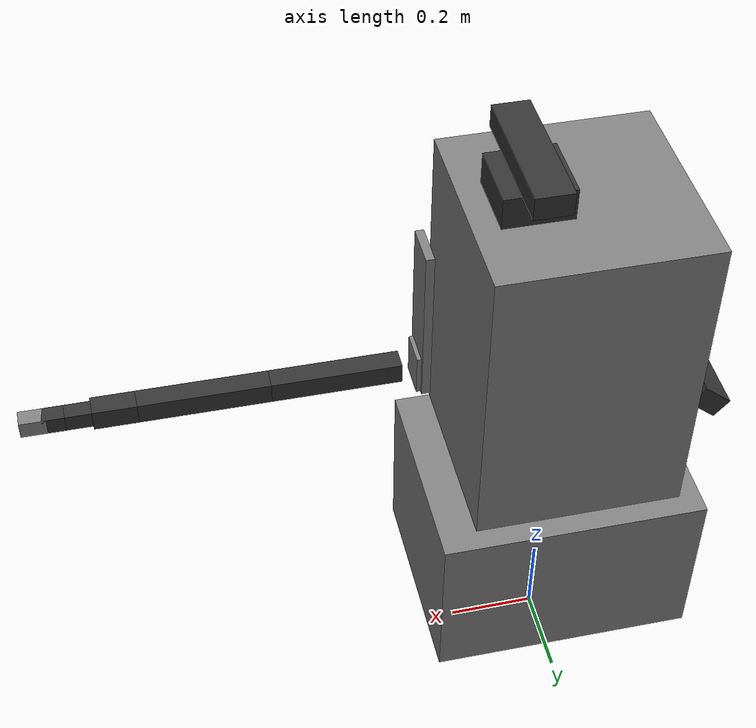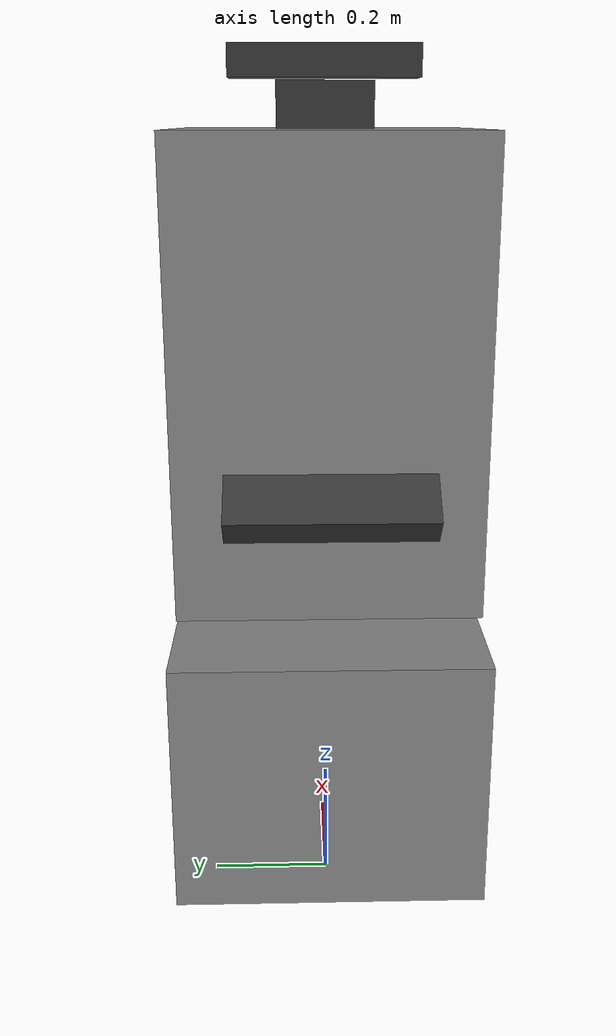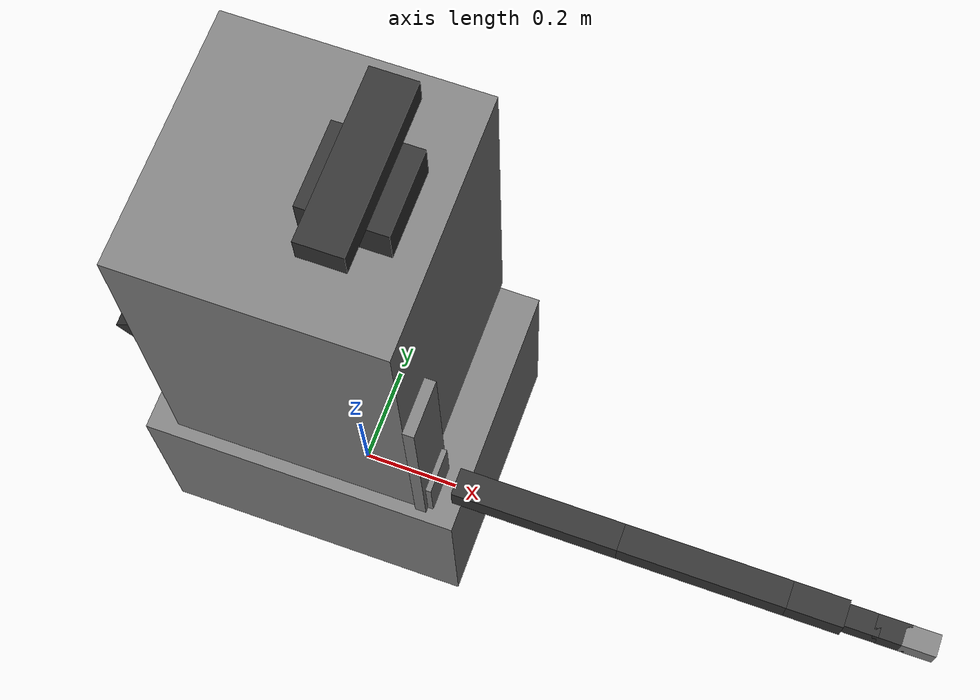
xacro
<?xml version="1.0"?>
<robot xmlns:xacro="http://www.ros.org/wiki/xacro" name="waiterbot">

  <xacro:property name="base_length"                value="0.6" />
  <xacro:property name="base_width"                 value="0.48" />
  <xacro:property name="base_height"                value="0.4" />
  <xacro:property name="base_ground_clearance"      value="0.15" />

  <xacro:property name="body_length"                value="0.46" />
  <xacro:property name="body_width"                 value="0.46" />
  <xacro:property name="body_height"                value="0.7" />
  <xacro:property name="body_base_min_gap"          value="0.05" />
  <xacro:property name="body_base_max_gap"          value="0.35" />
  <xacro:property name="body_max_sideways_angle"    value="0.17" />
  <xacro:property name="body_max_forward_angle"     value="0.17" />
  <xacro:property name="body_sideways_ang_vel"      value="0.1" />
  <xacro:property name="body_forward_ang_vel"       value="0.1" />
  <xacro:property name="body_vertical_vel"          value="0.02" />

  <xacro:property name="top_camera_base_length"     value="0.15" />
  <xacro:property name="top_camera_base_width"      value="0.15" />
  <xacro:property name="top_camera_base_height"     value="0.07" />

  <xacro:property name="top_camera_length"          value="0.08" />
  <xacro:property name="top_camera_width"           value="0.3" />
  <xacro:property name="top_camera_height"          value="0.05" />
  <xacro:property name="top_camera_mounting_height" value="0.1" />
  <xacro:property name="top_camera_mounting_distance" value="0.1" />
  <xacro:property name="top_camera_yaw_limit"       value="2" />
  <xacro:property name="top_camera_yaw_velocity"    value="0.5" />
  <xacro:property name="top_camera_pitch_limit"     value="1" />
  <xacro:property name="top_camera_pitch_velocity"  value="0.5" />

  <xacro:property name="arm_position_x"             value="0.25" />
  <xacro:property name="arm_position_y"             value="0.2" />
  <xacro:property name="arm_position_z"             value="0.1" />

  <xacro:property name="arm_base_slide_length"      value="0.02" />
  <xacro:property name="arm_base_slide_width"       value="0.1" />
  <xacro:property name="arm_base_slide_height"      value="0.4" />

  <xacro:property name="arm_base_slide_limit"       value="0.3" />
  <xacro:property name="arm_base_slide_velocity"    value="0.02" />

  <xacro:property name="arm_base_length"            value="0.02" />
  <xacro:property name="arm_base_width"             value="0.08" />
  <xacro:property name="arm_base_height"            value="0.1" />

  <xacro:property name="arm_link_2_length"          value="0.3" />
  <xacro:property name="arm_link_2_width"           value="0.05" />
  <xacro:property name="arm_link_2_height"          value="0.05" />

  <xacro:property name="arm_joint_2_limit"          value="2" />
  <xacro:property name="arm_joint_2_velocity"       value="0.5" />
  <xacro:property name="arm_joint_2_offset"         value="0.05" />

  <xacro:property name="arm_link_3_length"          value="0.3" />
  <xacro:property name="arm_link_3_width"           value="0.05" />
  <xacro:property name="arm_link_3_height"          value="0.05" />

  <xacro:property name="arm_joint_3_limit"          value="2" />
  <xacro:property name="arm_joint_3_velocity"       value="0.5" />

  <xacro:property name="arm_link_4_length"          value="0.1" />
  <xacro:property name="arm_link_4_width"           value="0.05" />
  <xacro:property name="arm_link_4_height"          value="0.05" />

  <xacro:property name="arm_joint_4_limit"          value="2" />
  <xacro:property name="arm_joint_4_velocity"       value="0.5" />

  <xacro:property name="arm_link_5_length"          value="0.06" />
  <xacro:property name="arm_link_5_width"           value="0.04" />
  <xacro:property name="arm_link_5_height"          value="0.04" />

  <xacro:property name="arm_joint_5_limit"          value="2" />
  <xacro:property name="arm_joint_5_velocity"       value="0.5" />

  <xacro:property name="arm_link_6_length"          value="0.06" />
  <xacro:property name="arm_link_6_width"           value="0.04" />
  <xacro:property name="arm_link_6_height"          value="0.04" />

  <xacro:property name="arm_joint_6_limit"          value="2" />
  <xacro:property name="arm_joint_6_velocity"       value="0.5" />

  <xacro:property name="gripper_length"             value="0.06" />
  <xacro:property name="gripper_width"              value="0.04" />
  <xacro:property name="gripper_height"             value="0.04" />

  <xacro:property name="gripper_limit"              value="2" />
  <xacro:property name="gripper_velocity"           value="0.5" />

  <xacro:property name="rear_camera_length"         value="0.08" />
  <xacro:property name="rear_camera_width"          value="0.3" />
  <xacro:property name="rear_camera_height"             value="0.05" />
  <xacro:property name="rear_camera_mounting_height"    value="0.1" />
  <xacro:property name="rear_camera_mounting_distance"  value="0.1" />

  <xacro:property name="rear_camera_pitch_limit"        value="2" />

  <xacro:macro name="rear_camera_origin" >
    <origin xyz="-0.3 0 0.2" rpy="0 0 3.14" />
  </xacro:macro>
  <xacro:macro name="rear_camera_yaw_origin" >
    <origin xyz="0 0 0" rpy="0 0.7 0" />
  </xacro:macro>s

  <xacro:macro name="material_metal" >
      <material name="metal">
        <color rgba="0.5 0.5 0.5 1"/>
      </material>
  </xacro:macro>

  <xacro:macro name="material_black_plastic" >
      <material name="black_plastic">
        <color rgba="0.2 0.2 0.2 1"/>
      </material>
  </xacro:macro>

  <link name="base_link" >
    <visual>
      <geometry>
        <box size="${base_length} ${base_width} ${base_height}"/>
      </geometry>
      <origin xyz="0 0 ${(base_height/2)+base_ground_clearance}" rpy="0 0 0" />
      <xacro:material_metal />
    </visual>
  </link>
  <link name="base_top_link" />
  <link name="body_bottom_prismatic_link" />
  <link name="body_bottom_roll_link" />
  <link name="body_bottom_yaw_link" >
    <visual>
      <geometry>
        <box size="${body_length} ${body_width} ${body_height}"/>
      </geometry>
      <origin xyz="0 0 ${body_height/2}" rpy="0 0 0" />
      <xacro:material_metal />
    </visual>
  </link>
  <link name="top_camera_base_link" >
    <visual>
      <geometry>
        <box size="${top_camera_base_length} ${top_camera_base_width} ${top_camera_base_height}"/>
      </geometry>
      <origin xyz="0 0 ${(top_camera_base_height/2)}" rpy="0 0 0" />
      <xacro:material_black_plastic />
    </visual>
  </link>
  <link name="top_camera_yaw_link" />
  <link name="top_camera_pitch_link" />
  <link name="top_camera_link" >
    <visual>
      <geometry>
        <box size="${top_camera_length} ${top_camera_width} ${top_camera_height}"/>
      </geometry>
      <origin xyz="0 0 0" rpy="0 0 0" />
      <xacro:material_black_plastic />
    </visual>
  </link>
  <link name="arm_base_link" >
    <visual>
      <geometry>
        <box size="${arm_base_slide_length} ${arm_base_slide_width} ${arm_base_slide_height}"/>
      </geometry>
      <origin xyz="0 0 ${arm_base_slide_height/2 - arm_base_height/2}" rpy="0 0 0" />
      <xacro:material_metal />
    </visual>
  </link>
  <link name="arm_link_1" >
    <visual>
      <geometry>
        <box size="${arm_base_length} ${arm_base_width} ${arm_base_height}"/>
      </geometry>
      <origin xyz="${arm_base_length/2} 0 0" rpy="0 0 0" />
      <xacro:material_metal />
    </visual>
  </link>
  <link name="arm_link_2" >
    <visual>
      <geometry>
        <box size="${arm_link_2_length} ${arm_link_2_width} ${arm_link_2_height}"/>
      </geometry>
      <origin xyz="${arm_link_2_length/2} 0 0" rpy="0 0 0" />
      <xacro:material_black_plastic />
    </visual>
  </link>
  <link name="arm_link_3" >
    <visual>
       <geometry>
        <box size="${arm_link_3_length} ${arm_link_3_width} ${arm_link_3_height}"/>
      </geometry>
      <origin xyz="${arm_link_3_length/2} 0 0" rpy="0 0 0" />
      <xacro:material_black_plastic />
    </visual>
  </link>
  <link name="arm_link_4" >
    <visual>
      <geometry>
        <box size="${arm_link_4_length} ${arm_link_4_width} ${arm_link_4_height}"/>
      </geometry>
      <origin xyz="${arm_link_4_length/2} 0 0" rpy="0 0 0" />
      <xacro:material_black_plastic />
    </visual>
  </link>
  <link name="arm_link_5" >
    <visual>
      <geometry>
        <box size="${arm_link_5_length} ${arm_link_5_width} ${arm_link_5_height}"/>
      </geometry>
      <origin xyz="${arm_link_5_length/2} 0 0" rpy="0 0 0" />
      <xacro:material_black_plastic />
    </visual>
  </link>
  <link name="arm_link_6" >
    <visual>
      <geometry>
        <box size="${arm_link_6_length} ${arm_link_6_width} ${arm_link_6_height}"/>
      </geometry>
      <origin xyz="${arm_link_6_length/2} 0 0" rpy="0 0 0" />
      <xacro:material_black_plastic />
    </visual>
  </link>
  <link name="arm_gripper_link" >
    <visual>
      <geometry>
        <box size="${gripper_length} ${gripper_width} ${gripper_height}"/>
      </geometry>
      <origin xyz="${gripper_length/2} 0 0" rpy="0 0 0" />
      <xacro:material_metal />
    </visual>
  </link>
  <link name="rear_camera_base_link" />
  <link name="rear_camera_yaw_link" />
  <link name="rear_camera_link" >
    <visual>
      <geometry>
        <box size="${rear_camera_length} ${rear_camera_width} ${rear_camera_height}"/>
      </geometry>
      <origin xyz="0 0 0" rpy="0 0 0" />
      <xacro:material_black_plastic />
    </visual>
  </link>

  <joint name="base_top_joint" type="fixed">
    <parent link="base_link"/>
    <child link="base_top_link"/>
    <origin xyz="0 0 ${base_height+base_ground_clearance}" rpy="0 0 0" />
  </joint>

  <joint name="body_bottom_prismatic_joint" type="prismatic">
    <parent link="base_top_link"/>
    <child link="body_bottom_prismatic_link"/>
    <axis xyz="0 0 1" />
    <origin xyz="0 0 ${body_base_min_gap}" rpy="0 0 0" />
    <limit effort="1000.0" lower="0" upper="${body_base_max_gap-body_base_min_gap}" velocity="${body_vertical_vel}" />
  </joint>

  <joint name="body_bottom_roll_joint" type="revolute">
    <parent link="body_bottom_prismatic_link"/>
    <child link="body_bottom_roll_link" />
    <axis xyz="1 0 0" />
    <origin xyz="0 0 0" rpy="0 0 0" />
    <limit effort="1000.0" lower="-${body_max_sideways_angle}" upper="${body_max_sideways_angle}" velocity="${body_sideways_ang_vel}" />
  </joint>

  <joint name="body_bottom_yaw_joint" type="revolute">
    <parent link="body_bottom_roll_link" />
    <child link="body_bottom_yaw_link" />
    <axis xyz="0 1 0" />
    <origin xyz="0 0 0" rpy="0 0 0" />
    <limit effort="1000.0" lower="-${body_max_forward_angle}" upper="${body_max_forward_angle}" velocity="${body_forward_ang_vel}" />
  </joint>

  <joint name="top_camera_base_joint" type="fixed">
    <parent link="body_bottom_yaw_link" />
    <child link="top_camera_base_link" />
    <origin xyz="${top_camera_mounting_distance} 0 ${body_height}" rpy="0 0 0" />
  </joint>

  <joint name="top_camera_yaw_joint" type="revolute">
    <parent link="top_camera_base_link" />
    <child link="top_camera_yaw_link" />
    <origin xyz="0 0 ${top_camera_mounting_height}" rpy="0 0 0" />
    <axis xyz="0 0 1" />
    <limit effort="1000.0" lower="-${top_camera_yaw_limit}" upper="${top_camera_yaw_limit}" velocity="${top_camera_yaw_velocity}" />
  </joint>

  <joint name="top_camera_pitch_joint" type="revolute">
    <parent link="top_camera_yaw_link" />
    <child link="top_camera_pitch_link" />
    <origin xyz="0 0 0" rpy="0 0 0" />
    <axis xyz="0 1 0" />
    <limit effort="1000.0" lower="-${top_camera_pitch_limit}" upper="${top_camera_pitch_limit}" velocity="${top_camera_pitch_velocity}" />
  </joint>

  <joint name="top_camera_joint" type="fixed">
    <parent link="top_camera_pitch_link" />
    <child link="top_camera_link" />
    <origin xyz="0 0 0" rpy="0 0 0" />
  </joint>

  <joint name="arm_base_joint" type="fixed">
    <parent link="body_bottom_yaw_link" />
    <child link="arm_base_link" />
    <origin xyz="${arm_position_x} -${arm_position_y} ${arm_position_z}" rpy="0 0 0" />
  </joint>

  <joint name="arm_joint_1" type="prismatic">
    <parent link="arm_base_link" />
    <child link="arm_link_1" />
    <origin xyz="0 0 0" rpy="0 0 0" />
    <axis xyz="0 0 1" />
    <limit effort="1000.0" lower="0" upper="${arm_base_slide_limit}" velocity="${arm_base_slide_velocity}" />
  </joint>

  <joint name="arm_joint_2" type="revolute" >
    <parent link="arm_link_1" />
    <child link="arm_link_2" />
    <origin xyz="${arm_joint_2_offset} 0 0" rpy="0 0 0" />
    <axis xyz="0 0 1" />
    <limit effort="1000.0" lower="-${arm_joint_2_limit}" upper="${arm_joint_2_limit}" velocity="${arm_joint_2_velocity}" />
  </joint>

  <joint name="arm_joint_3" type="revolute" >
    <parent link="arm_link_2" />
    <child link="arm_link_3" />
    <origin xyz="${arm_link_2_length} 0 0" rpy="0 0 0" />
    <axis xyz="0 0 1" />
    <limit effort="1000.0" lower="-${arm_joint_3_limit}" upper="${arm_joint_3_limit}" velocity="${arm_joint_3_velocity}" />
  </joint>

  <joint name="arm_joint_4" type="revolute" >
    <parent link="arm_link_3" />
    <child link="arm_link_4" />
    <origin xyz="${arm_link_2_length} 0 0" rpy="0 0 0" />
    <axis xyz="0 0 1" />
    <limit effort="1000.0" lower="-${arm_joint_4_limit}" upper="${arm_joint_4_limit}" velocity="${arm_joint_4_velocity}" />
  </joint>

  <joint name="arm_joint_5" type="revolute" >
    <parent link="arm_link_4" />
    <child link="arm_link_5" />
    <origin xyz="0.1 0 0" rpy="0 0 0" />
    <axis xyz="0 1 0" />
    <limit effort="1000.0" lower="-${arm_joint_5_limit}" upper="${arm_joint_5_limit}" velocity="${arm_joint_5_velocity}" />
  </joint>

  <joint name="arm_joint_6" type="revolute" >
    <parent link="arm_link_5" />
    <child link="arm_link_6" />
    <origin xyz="0.05 0 0" rpy="0 0 0" />
    <axis xyz="1 0 0" />
    <limit effort="1000.0" lower="-${arm_joint_6_limit}" upper="${arm_joint_6_limit}" velocity="${arm_joint_6_velocity}" />
  </joint>

  <joint name="arm_gripper_joint" type="revolute" >
    <parent link="arm_link_6" />
    <child link="arm_gripper_link" />
    <origin xyz="0.05 0 0" rpy="0 0 0" />
    <axis xyz="0 0 1" />
    <limit effort="1000.0" lower="-${gripper_limit}" upper="${gripper_limit}" velocity="${gripper_velocity}" />
  </joint>

  <joint name="rear_camera_base_joint" type="fixed">
    <parent link="body_bottom_yaw_link" />
    <child link="rear_camera_base_link" />
    <xacro:rear_camera_origin />
  </joint>

  <joint name="rear_camera_yaw_joint" type="fixed">
    <parent link="rear_camera_base_link" />
    <child link="rear_camera_yaw_link" />
    <xacro:rear_camera_yaw_origin />
  </joint>

  <joint name="rear_camera_joint" type="fixed">
    <parent link="rear_camera_yaw_link" />
    <child link="rear_camera_link" />
    <origin xyz="0 0 0" rpy="0 0 0" />
  </joint>

</robot>
